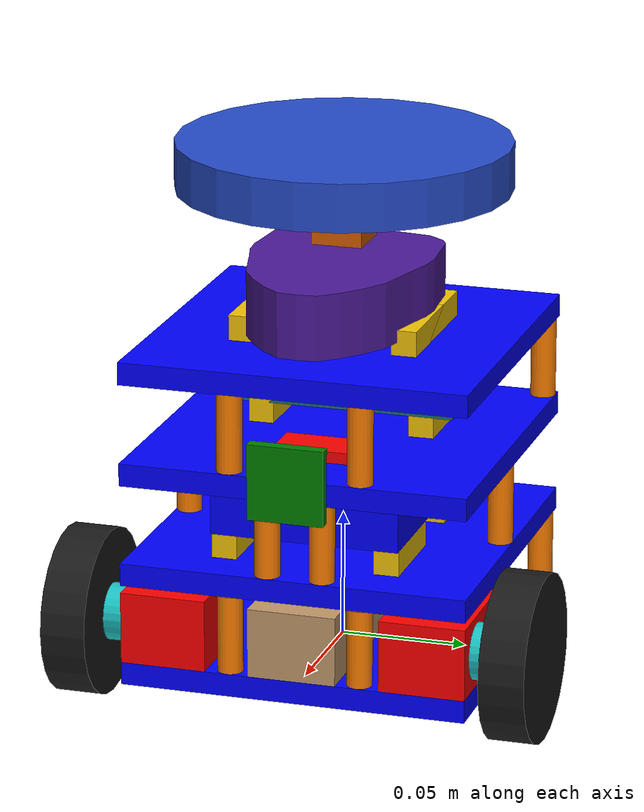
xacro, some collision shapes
<?xml version="1.0" ?>

<robot name="turtlebot3_burger" xmlns:xacro="http://www.ros.org/wiki/xacro">

 <xacro:arg name="use_sim" default="True" />
  <link name="odom">
  </link>
  <link name="base_footprint">
  </link>

  <joint name="odom_base_link_joint" type="fixed">
    <origin rpy="0 0 0" xyz="0 0 0"/>
    <parent link="odom"/>
    <child link="base_footprint"/>
  </joint>

  <xacro:include filename="$(find ros2_urdf_project_gazebo)/xacro/tb3_burger_material.xacro" />

  <!-- if we use Gazebo -->

  <xacro:if value="$(arg use_sim)">
    <xacro:include filename="$(find ros2_urdf_project_gazebo)/xacro/gazebo_materials.xacro" />
    <xacro:include filename="$(find ros2_urdf_project_gazebo)/xacro/gazebo_sensors.xacro" />
    <xacro:include filename="$(find ros2_urdf_project_gazebo)/xacro/gazebo_plugins.xacro" />
  </xacro:if>

  <xacro:include filename="$(find ros2_urdf_project_gazebo)/xacro/chassis.xacro" />
  <xacro:include filename="$(find ros2_urdf_project_gazebo)/xacro/electronics.xacro" />
  <xacro:include filename="$(find ros2_urdf_project_gazebo)/xacro/wheel.xacro" />
  <xacro:include filename="$(find ros2_urdf_project_gazebo)/xacro/sensors.xacro" />

  <!-- chassis 137.5mm x 137.5mm x 9mm -->
 <xacro:chassis_macro name="chassis"/>
 <xacro:chassis_macro name="chassis1"/>
 <xacro:chassis_macro name="chassis2"/>
 <xacro:chassis_macro name="chassis3"/>

  <joint name="base_link_joint" type="fixed">
    <origin rpy="0 0 0" xyz="0 0 0"/>
    <parent link="base_footprint"/>
    <child link="chassis"/>
  </joint>

  <!-- Drive motor - 46.5mm x 34mm x 28.5mm -->
  <xacro:drive_motor_macro name="drive_motor_1"/>
  <xacro:drive_motor_macro name="drive_motor_2"/>

  <joint name="chasis_left_drive_motor" type="fixed">
    <origin rpy="0 0 0" xyz="0.0455 0.05175 0.01875"/>
    <parent link="chassis"/>
    <child link="drive_motor_1"/>
  </joint>

  <joint name="chasis_right_drive_motor" type="fixed">
    <origin rpy="0 0 0" xyz="0.0455 -0.05175 0.01875"/>
    <parent link="chassis"/>
    <child link="drive_motor_2"/>
  </joint>

    <joint name="front_pitch_joint" type="continuous">
    <origin rpy="0 0 0" xyz="0 0 0"/>
    <parent link="front_roll_link"/>
    <child link="front_pitch_link"/>
    <axis xyz="0 1 0"/>
    <limit effort="1000.0" velocity="100.0"/>
    <dynamics damping="0.0" friction="0.1"/>
  </joint>

  <joint name="chasis_battery" type="fixed">
    <origin rpy="0 0 0" xyz="0.01875 0 0.01825"/>
    <parent link="chassis"/>
    <child link="battery"/>
  </joint>

   <xacro:spacer_35mm_macro name="spacer_chasis_1_01"/>
   <xacro:spacer_35mm_macro name="spacer_chasis_1_02"/>
   <xacro:spacer_35mm_macro name="spacer_chasis_1_03"/>
   <xacro:spacer_35mm_macro name="spacer_chasis_1_04"/>

  <joint name="chasis_spacer_chasis_1_01" type="fixed">
    <origin rpy="0 0 0" xyz="0.06375 -0.025875 0.01825"/>
    <parent link="chassis"/>
    <child link="spacer_chasis_1_01"/>
  </joint>

  <joint name="chasis_spacer_chasis_1_02" type="fixed">
    <origin rpy="0 0 0" xyz="0.06375 0.025875 0.01825"/>
    <parent link="chassis"/>
    <child link="spacer_chasis_1_02"/>
  </joint>

  <joint name="chasis_spacer_chasis_1_03" type="fixed">
    <origin rpy="0 0 0" xyz="-0.06375 -0.06375 0.01825"/>
    <parent link="chassis"/>
    <child link="spacer_chasis_1_03"/>
  </joint>

  <joint name="chasis_spacer_chasis_1_04" type="fixed">
    <origin rpy="0 0 0" xyz="-0.06375 0.06375 0.01825"/>
    <parent link="chassis"/>
    <child link="spacer_chasis_1_04"/>
  </joint>

  <xacro:drive_wheel_axel_macro name="drive_wheel_axel_l"/>
  <xacro:drive_wheel_axel_macro name="drive_wheel_axel_r"/>

  <joint name="drive_wheel_to_axel_l" type="fixed">
    <origin rpy="1.57 0 0" xyz="0.05175 -0.073425 0.01875"/>
    <parent link="chassis"/>
    <child link="drive_wheel_axel_l"/>
  </joint>

  <joint name="drive_wheel_to_axel_r" type="fixed">
    <origin rpy="1.57 0 0" xyz="0.05175 0.073425 0.01875"/>
    <parent link="chassis"/>
    <child link="drive_wheel_axel_r"/>
  </joint>

  <xacro:drive_wheel_macro name="drive_wheel_l"/>
  <xacro:drive_wheel_macro name="drive_wheel_r"/>

  <joint name="drive_wheel_tire_to_axel_l" type="continuous">
    <origin rpy="1.57 0 0" xyz="0.05175 -0.087 0.01875"/>
    <parent link="chassis"/>
    <child link="drive_wheel_l"/>
    <axis xyz="0 0 1"/>
    <limit effort="10.0" velocity="10.0"/>
    <dynamics damping="0.0" friction="0.1"/>
  </joint>

  <joint name="drive_wheel_tire_to_axel_r" type="continuous">
    <origin rpy="1.57 0 0" xyz="0.05175 0.087 0.01875"/>
    <parent link="chassis"/>
    <child link="drive_wheel_r"/>
    <axis xyz="0 0 1"/>
    <limit effort="100.0" velocity="100.0"/>
    <dynamics damping="0.0" friction="0.1"/>
  </joint>

  <joint name="drive_castor_wheel_support_size" type="fixed">
    <origin rpy="0 0 0" xyz="-0.05175 0 -0.009"/>
    <parent link="chassis"/>
    <child link="drive_castor_wheel_support"/>
  </joint>

  <joint name="front_yaw_joint" type="continuous">
    <origin rpy="0 0 0" xyz="0 0 -0.004"/>
    <parent link="drive_castor_wheel_support"/>
    <child link="front_yaw_link"/>
    <axis xyz="0 0 1"/>
    <limit effort="100.0" velocity="100.0"/>
    <dynamics damping="0.0" friction="0.1"/>
  </joint>

  <joint name="front_roll_joint" type="continuous">
    <origin rpy="0 0 0" xyz="0 0 0"/>
    <parent link="front_yaw_link"/>
    <child link="front_roll_link"/>
    <axis xyz="1 0 0"/>
    <limit effort="100.0" velocity="100.0"/>
    <dynamics damping="0.0" friction="0.1"/>
  </joint>

  <!-- chassis 137.5mm x 137.5mm x 9mm -->
  <joint name="chasis_to_chasis_1" type="fixed">
    <origin rpy="0 0 0" xyz="0 0 0.0405"/>
    <parent link="chassis"/>
    <child link="chassis1"/>
  </joint>

  <xacro:spacer_45mm_macro name="spacer_chasis_2_01"/>
  <xacro:spacer_45mm_macro name="spacer_chasis_2_02"/>
  <xacro:spacer_45mm_macro name="spacer_chasis_2_03"/>
  <xacro:spacer_45mm_macro name="spacer_chasis_2_04"/>

  <joint name="chasis_spacer_chasis_2_01" type="fixed">
    <origin rpy="0 0 0" xyz="0.06375 -0.010875 0.01825"/>
    <parent link="chassis1"/>
    <child link="spacer_chasis_2_01"/>
  </joint>

  <joint name="chasis_spacer_chasis_2_02" type="fixed">
    <origin rpy="0 0 0" xyz="0.06375 0.010875 0.01825"/>
    <parent link="chassis1"/>
    <child link="spacer_chasis_2_02"/>
  </joint>

  <joint name="chasis_spacer_chasis_2_03" type="fixed">
    <origin rpy="0 0 0" xyz="-0 -0.06375 0.01825"/>
    <parent link="chassis1"/>
    <child link="spacer_chasis_2_03"/>
  </joint>

  <joint name="chasis_spacer_chasis_2_04" type="fixed">
    <origin rpy="0 0 0" xyz="0 0.06375 0.01825"/>
    <parent link="chassis1"/>
    <child link="spacer_chasis_2_04"/>
  </joint>

  <joint name="control_board_to_chasis_1" type="fixed">
    <origin rpy="0 0 0" xyz="0 0 0.0225"/>
    <parent link="chassis1"/>
    <child link="control_board"/>
  </joint>

  <xacro:pcb_mount_macro name="pcb_mount_01"/>
  <xacro:pcb_mount_macro name="pcb_mount_02"/>
  <xacro:pcb_mount_macro name="pcb_mount_03"/>
  <xacro:pcb_mount_macro name="pcb_mount_04"/>

  <joint name="pcb_01_to_controlboard" type="fixed">
    <origin rpy="0 0 0" xyz="0.0321 0.0325 0.0095"/>
    <parent link="chassis1"/>
    <child link="pcb_mount_01"/>
  </joint>

  <joint name="pcb_02_to_controlboard" type="fixed">
    <origin rpy="0 0 0" xyz="-0.0321 0.0325 0.0095"/>
    <parent link="chassis1"/>
    <child link="pcb_mount_02"/>
  </joint>

  <joint name="pcb_03_to_controlboard" type="fixed">
    <origin rpy="0 0 0" xyz="0.0321 -0.0325 0.0095"/>
    <parent link="chassis1"/>
    <child link="pcb_mount_03"/>
  </joint>

  <joint name="pcb_04_to_controlboard" type="fixed">
    <origin rpy="0 0 0" xyz="-0.0321 -0.0325 0.0095"/>
    <parent link="chassis1"/>
    <child link="pcb_mount_04"/>
  </joint>
  <!-- chassis 137.5mm x 137.5mm x 9mm -->
  <joint name="chasis_1_to_chasis_2" type="fixed">
    <origin rpy="0 0 0" xyz="0 0 0.0405"/>
    <parent link="chassis1"/>
    <child link="chassis2"/>
  </joint>

  <xacro:spacer_45mm_macro name="spacer_chasis_3_01"/>
  <xacro:spacer_45mm_macro name="spacer_chasis_3_02"/>
  <xacro:spacer_45mm_macro name="spacer_chasis_3_03"/>
  <xacro:spacer_45mm_macro name="spacer_chasis_3_04"/>

  <joint name="chasis_spacer_chasis_3_01" type="fixed">
    <origin rpy="0 0 0" xyz="0.06375 -0.025875 0.01825"/>
    <parent link="chassis2"/>
    <child link="spacer_chasis_3_01"/>
  </joint>

  <joint name="chasis_spacer_chasis_3_02" type="fixed">
    <origin rpy="0 0 0" xyz="0.06375 0.025875 0.01825"/>
    <parent link="chassis2"/>
    <child link="spacer_chasis_3_02"/>
  </joint>

  <joint name="chasis_spacer_chasis_3_03" type="fixed">
    <origin rpy="0 0 0" xyz="-0.06375 -0.06375 0.01825"/>
    <parent link="chassis2"/>
    <child link="spacer_chasis_3_03"/>
  </joint>

  <joint name="chasis_spacer_chasis_3_04" type="fixed">
    <origin rpy="0 0 0" xyz="-0.06375 0.06375 0.01825"/>
    <parent link="chassis2"/>
    <child link="spacer_chasis_3_04"/>
  </joint>

  <joint name="lidar_usb_board_to_chasis_2" type="fixed">
    <origin rpy="0 0 0" xyz="0.035 0 0.00674"/>
    <parent link="chassis2"/>
    <child link="lidar_usb_board"/>
  </joint>

  <joint name="rsb_board_to_chasis_1" type="fixed">
    <origin rpy="0 0 0" xyz="-0.025 0 0.0225"/>
    <parent link="chassis2"/>
    <child link="rsb_board"/>
  </joint>

  <xacro:pcb_mount_macro name="rsb_mount_01"/>
  <xacro:pcb_mount_macro name="rsb_mount_02"/>
  <xacro:pcb_mount_macro name="rsb_mount_03"/>
  <xacro:pcb_mount_macro name="rsb_mount_04"/>

  <joint name="rsb_01_to_controlboard" type="fixed">
    <origin rpy="0 0 0" xyz="-0.01491 0.0325 0.0095"/>
    <parent link="chassis2"/>
    <child link="rsb_mount_01"/>
  </joint>

  <joint name="rsb_02_to_controlboard" type="fixed">
    <origin rpy="0 0 0" xyz="-0.03509 0.0325 0.0095"/>
    <parent link="chassis2"/>
    <child link="rsb_mount_02"/>
  </joint>

  <joint name="rsb_03_to_controlboard" type="fixed">
    <origin rpy="0 0 0" xyz="-0.01491 -0.0325 0.0095"/>
    <parent link="chassis2"/>
    <child link="rsb_mount_03"/>
  </joint>

  <joint name="rsb_04_to_controlboard" type="fixed">
    <origin rpy="0 0 0" xyz="-0.03509 -0.0325 0.0095"/>
    <parent link="chassis2"/>
    <child link="rsb_mount_04"/>
  </joint>
  <!-- chassis 137.5mm x 137.5mm x 9mm -->

  <joint name="chasis_2_to_chasis_3" type="fixed">
    <origin rpy="0 0 0" xyz="0 0 0.0405"/>
    <parent link="chassis2"/>
    <child link="chassis3"/>
  </joint>

  <joint name="lidar_board_to_chasis_1" type="fixed">
    <origin rpy="0 0 0" xyz="0 0 0.0225"/>
    <parent link="chassis3"/>
    <child link="lidar_board"/>
  </joint>

  <xacro:pcb_mount_macro name="lidar_mount_01"/>
  <xacro:pcb_mount_macro name="lidar_mount_02"/>
  <xacro:pcb_mount_macro name="lidar_mount_03"/>
  <xacro:pcb_mount_macro name="lidar_mount_04"/>

  <joint name="lidar_01_to_controlboard" type="fixed">
    <origin rpy="0 0 0" xyz="0.01009 0.0325 0.0095"/>
    <parent link="chassis3"/>
    <child link="lidar_mount_01"/>
  </joint>

  <joint name="lidar_02_to_controlboard" type="fixed">
    <origin rpy="0 0 0" xyz="-0.01009 0.0325 0.0095"/>
    <parent link="chassis3"/>
    <child link="lidar_mount_02"/>
  </joint>

  <joint name="lidar_03_to_controlboard" type="fixed">
    <origin rpy="0 0 0" xyz="0.01009 -0.0325 0.0095"/>
    <parent link="chassis3"/>
    <child link="lidar_mount_03"/>
  </joint>

  <joint name="lidar_04_to_controlboard" type="fixed">
    <origin rpy="0 0 0" xyz="-0.01009 -0.0325 0.0095"/>
    <parent link="chassis3"/>
    <child link="lidar_mount_04"/>
  </joint>

    <joint name="laser_scan_link_joint" type="prismatic">
        <origin rpy="0 0 0" xyz="0.0 0.0 0.05"/>
        <parent link="chassis3"/>
        <child link="laser_scan_link"/>
        <axis xyz="0 0 1"/>
        <limit lower="-0.1" upper="0.0" effort="20.0" velocity="2.0"/>
        <dynamics damping="0.1" friction="1.0"/>
    </joint>

     <joint name="laser_scan_model_link_joint" type="continuous">
        <origin rpy="0 0 0" xyz="0.0 0.0 0.0"/>
        <parent link="laser_scan_link"/>
        <child link="laser_scan_model_link"/>
        <axis xyz="0 0 1"/>
        <limit effort="10.0" velocity="2.0"/>
        <dynamics friction="0.01"/>
    </joint>

  <xacro:if value="$(arg use_sim)">
    <joint name="laser_scan_frame_joint" type="fixed">
        <origin rpy="0 0 0" xyz="0 0 0.03"/>
        <parent link="laser_scan_link"/>
        <child link="laser_scan_frame"/>
        <axis xyz="0 0 0"/>
    </joint>
    <joint name="rgb_camera_link_frame_joint" type="fixed">
        <origin rpy="0 0 0" xyz="0.07375 0.0 0.005"/>
        <parent link="chassis2"/>
        <child link="rgb_camera_link_frame"/>
        <axis xyz="0 0 0"/>
    </joint>
  </xacro:if>
    <joint name="pointcloud_link_joint" type="fixed">
        <origin rpy="0 0 0" xyz="0.07375 0.0 0.005"/>
        <parent link="chassis2"/>
        <child link="pointcloud_link"/>
        <axis xyz="0 0 0"/>
    </joint>

  <link name="imu_link"/>

  <link name="pointcloud_link">
  </link>

  <joint name="imu_joint" type="fixed">
    <parent link="chassis3"/>
    <child link="imu_link"/>
    <origin rpy="0 0 0" xyz="-0.10 0 0.05"/>
  </joint>
</robot>

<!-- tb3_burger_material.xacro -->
<robot xmlns:xacro="http://www.ros.org/wiki/xacro">
  <material name="spacer_35mm">
    <color rgba="0.088656 0.428691 0.491021 1"/>
  </material>
  <material name="default_material">
    <color rgba="0.088656 0.428691 0.491021 1"/>
  </material>
    <material name="box_bot_blue">
      <color rgba="0.0 0.0 1.0 1.0"/>
    </material>
      <material name="drive_motor">
    <color rgba="1.0 0.0 0.0 1"/>
    </material>
      <material name="maroon">
    <color rgba="1.0 0.0 0.0 1"/>
    </material>
  <material name="battery">
    <color rgba="0.55 0.55 0.55 1"/>
  </material>
  <material name="wheel_axel">
    <color rgba="0.1 0.75 0.75 1"/>
  </material>
  <material name="wheel">
    <color rgba="0.1 0.1 0.1 1"/>
  </material>
  <material name="castor_wheel_support">
    <color rgba="0 0.5 0.5 1"/>
  </material>
  <material name="red">
    <color rgba="1.0 0.0 0.0 1"/>
  </material>
  <material name="green_light">
    <color rgba="0.0 1.0 0.0 1"/>
  </material>
  <material name="green_dark">
    <color rgba="0.0 0.5 0.0 1"/>
  </material>
  <material name="blue">
    <color rgba="0.0 0.0 1.0 1"/>
  </material>
  <material name="black">
    <color rgba="0.0 0.0 0.0 1"/>
  </material>
  <material name="white">
    <color rgba="1.0 1.0 1.0 1"/>
  </material>
  </robot>

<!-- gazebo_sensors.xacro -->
<robot xmlns:xacro="http://www.ros.org/wiki/xacro">
  <gazebo reference="imu_link">
    <sensor name="br_imu" type="imu">
      <always_on>true</always_on>
      <update_rate>100</update_rate>
      <imu>
        <angular_velocity>
          <x>
            <noise type="gaussian">
              <mean>0.0</mean>
              <stddev>2e-4</stddev>
            </noise>
          </x>
          <y>
            <noise type="gaussian">
              <mean>0.0</mean>
              <stddev>2e-4</stddev>
            </noise>
          </y>
          <z>
            <noise type="gaussian">
              <mean>0.0</mean>
              <stddev>2e-4</stddev>
            </noise>
          </z>
        </angular_velocity>
        <linear_acceleration>
          <x>
            <noise type="gaussian">
              <mean>0.0</mean>
              <stddev>1.7e-2</stddev>
            </noise>
          </x>
          <y>
            <noise type="gaussian">
              <mean>0.0</mean>
              <stddev>1.7e-2</stddev>
            </noise>
          </y>
          <z>
            <noise type="gaussian">
              <mean>0.0</mean>
              <stddev>1.7e-2</stddev>
            </noise>
          </z>
        </linear_acceleration>
      </imu>
      <plugin filename="libgazebo_ros_imu_sensor.so" name="bytes_imu">
        <ros>
          <namespace>imu</namespace>
          <remapping>~/out:=data</remapping>
        </ros>
        <initial_orientation_as_reference>false</initial_orientation_as_reference>
      </plugin>
    </sensor>
  </gazebo>
    <link name="laser_scan_frame">
  </link>
  <gazebo reference="laser_scan_frame">
    <sensor name="sensor_ray" type="ray">
      <pose>0 0 0 0 0 0</pose>
      <ray>
        <scan>
          <horizontal>
            <samples>200</samples>
            <resolution>1.0</resolution>
            <min_angle>-3.14</min_angle>
            <max_angle>3.14</max_angle>
          </horizontal>
        </scan>
        <range>
          <min>0.1</min>
          <max>5.0</max>
        </range>
      </ray>
      <always_on>true</always_on>
      <visualize>true</visualize>
      <update_rate>100.0</update_rate>
      <plugin filename="libgazebo_ros_ray_sensor.so" name="laser">
        <ros>
          <namespace>ros2_urdf_project_gazebo</namespace>
          <remapping>~/out:=scan</remapping>
        </ros>
        <output_type>sensor_msgs/LaserScan</output_type>
      </plugin>
    </sensor>
  </gazebo>

    <gazebo reference="rgb_camera_link_frame">
    <sensor name="camera" type="wideanglecamera">
      <camera>
        <horizontal_fov>6.283</horizontal_fov>
        <image>
          <width>320</width>
          <height>240</height>
        </image>
        <clip>
          <near>0.1</near>
          <far>100</far>
        </clip>
        <lens>
          <type>custom</type>
          <custom_function>
            <c1>1.05</c1>
            <c2>4</c2>
            <f>1.0</f>
            <fun>tan</fun>
          </custom_function>
          <scale_to_hfov>true</scale_to_hfov>
          <cutoff_angle>3.1415</cutoff_angle>
          <env_texture_size>512</env_texture_size>
        </lens>
        <always_on>1</always_on>
        <update_rate>30</update_rate>
      </camera>
      <plugin filename="libgazebo_ros_camera.so" name="camera_controller">
        <cameraName>rgb_camera</cameraName>
        <imageTopicName>image_raw</imageTopicName>
        <cameraInfoTopicName>camera_info</cameraInfoTopicName>
        <frameName>rgb_camera_link_frame</frameName>
        <hackBaseline>0.07</hackBaseline>
      </plugin>
    </sensor>
  </gazebo>
  <gazebo>
    <plugin filename="libgazebo_ros2_control.so" name="gazebo_ros2_control">
      <parameters>$(find ros2_urdf_project_gazebo)/config/controller_position.yaml</parameters>
      <robot_param_node>/robot_state_publisher_node</robot_param_node>
    </plugin>
  </gazebo>

  <link name="rgb_camera_link_frame">
    <inertial>
      <mass value="0.010"/>
      <inertia ixx="1.5e-06" ixy="0" ixz="0" iyy="7.708333333333333e-07" iyz="0" izz="7.708333333333333e-07"/>
    </inertial>
    <visual>
      <geometry>
        <box size="0.005 0.030 0.030"/>
      </geometry>
      <material name="green_dark"/>
    </visual>
    <collision>
      <geometry>
        <box size="0.005 0.030 0.030"/>
      </geometry>
    </collision>
  </link>

  <ros2_control name="GazeboSystem" type="system">
    <hardware>
      <plugin>gazebo_ros2_control/GazeboSystem</plugin>
    </hardware>
    <joint name="laser_scan_link_joint">
      <command_interface name="position">
        <min>-0.05</min>
        <max>0.0</max>
      </command_interface>
      <state_interface name="position"/>
      <state_interface name="velocity"/>
      <state_interface name="effort"/>
    </joint>
    <joint name="laser_scan_model_link_joint">
      <command_interface name="velocity">
        <min>0.0</min>
        <max>2.0</max>
      </command_interface>
      <state_interface name="position"/>
      <state_interface name="velocity"/>
      <state_interface name="effort"/>
    </joint>
  </ros2_control>
</robot>

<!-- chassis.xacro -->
<robot name="turtlebot3_burger" xmlns:xacro="http://www.ros.org/wiki/xacro">

  <xacro:property name="chassis_width" value="0.1375"/>
  <xacro:property name="chassis_length" value="0.1375"/>
  <xacro:property name="chassis_height" value="0.009"/>
  <xacro:property name="chassis_mass" value="0.035"/>

  <xacro:macro name="chassis_macro" params="name">
  <link name="${name}">
    <inertial>
      <mass value="${chassis_mass}"/>
      <origin rpy="0 0 0" xyz="0 0 0"/>
      <inertia ixx="5.537947916666668e-05" ixy="0" ixz="0" iyy="5.537947916666668e-05" iyz="0" izz="0.00011028645833333336"/>
    </inertial>
    <collision>
      <geometry>
        <box size="${chassis_width} ${chassis_length} ${chassis_height}"/>
      </geometry>
    </collision>
    <visual>
      <geometry>
        <box size="${chassis_width} ${chassis_length} ${chassis_height}"/>
      </geometry>
      <material name="blue">
      <color rgba="0.0 0.0 1.0 1.0"/>
    </material>
    </visual>
  </link>
  </xacro:macro>

  <xacro:macro name="spacer_35mm_macro" params="name">
  <link name="${name}">
    <inertial>
      <mass value="0.007"/>
      <origin rpy="0 0 0" xyz="0 0 0"/>
      <inertia ixx="7.583333e-07" ixy="0.0" ixz="0.0" iyy="7.583333e-07" iyz="0.0" izz="8.750000e-08"/>
    </inertial>
    <collision>
      <geometry>
        <cylinder length="0.035" radius="0.005"/>
      </geometry>
      <origin rpy="0 0 0" xyz="0 0 0"/>
    </collision>
    <visual>
      <geometry>
        <cylinder length="0.035" radius="0.005"/>
      </geometry>
      <material name="orange">
      <color rgba="1.0 0.5 0.0 1.0"/>
    </material>
    </visual>
  </link>
  </xacro:macro>

  <xacro:macro name="spacer_45mm_macro" params="name">
  <link name="${name}">
  <inertial>
      <mass value="0.009"/>
      <origin rpy="0 0 0" xyz="0 0 0"/>
      <inertia ixx="1.5749999999999997e-06" ixy="0" ixz="0" iyy="1.5749999999999997e-06" iyz="0" izz="1.125e-07"/>
    </inertial>
    <collision>
      <geometry>
        <cylinder length="0.045" radius="0.005"/>
      </geometry>
      <origin rpy="0 0 0" xyz="0 0 0"/>
    </collision>
    <visual>
      <geometry>
        <cylinder length="0.045" radius="0.005"/>
      </geometry>
      <material name="orange">
      <color rgba="1.0 0.5 0.0 1.0"/>
    </material>
    </visual>
  </link>
  </xacro:macro>

  <link name="battery">
    <!-- Inertial Block -->
    <inertial>
      <mass value="0.2"/>
      <origin rpy="0 0 0" xyz="0 0 0"/>
      <!-- Center of mass assumed at the origin -->
      <inertia ixx="3.302083333333334e-05" ixy="0" ixz="0" iyy="0.00017927083333333337" iyz="0" izz="0.00018708333333333337"/>
    </inertial>
    <!-- Collision Block -->
    <collision>
      <geometry>
        <box size="0.1 0.035 0.0275"/>
        <!-- Width, Depth, Height -->
      </geometry>
      <origin rpy="0 0 0" xyz="0 0 0"/>
      <!-- Assuming the collision box is aligned with the link's frame -->
    </collision>
    <visual>
      <geometry>
        <box size="0.100 0.035 0.0275"/>
      </geometry>
    <material name="Wood">
        <color rgba="0.76 0.60 0.42 1"/>
    </material>

    </visual>
  </link>

  <xacro:macro name="pcb_mount_macro" params="name">
  <link name="${name}">
    <inertial>
      <origin xyz="0 0 0"/>
      <mass value="0.005"/>
      <inertia ixx="8.333333333333334e-08" ixy="0.0" ixz="0.0" iyy="6.376468333333333e-07" iyz="0.0" izz="6.376468333333333e-07"/>
    </inertial>
    <collision>
      <origin xyz="0 0 0"/>
      <geometry>
        <box size="0.03782 0.010 0.010"/>
      </geometry>
    </collision>
    <visual>
      <geometry>
        <box size="0.03782 0.010 0.010"/>
      </geometry>
    <material name="ZincYellow">
        <color rgba="0.956 0.776 0.023 1"/>
    </material>

    </visual>
  </link>
  </xacro:macro>

</robot>

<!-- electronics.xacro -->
<robot xmlns:xacro="http://www.ros.org/wiki/xacro">
  <!-- chassis 137.5mm x 137.5mm x 9mm -->
  <xacro:property name="drive_motor_width" value="0.0465"/>
  <xacro:property name="drive_motor_length" value="0.034"/>
  <xacro:property name="drive_motor_height" value="0.0285"/>
  <xacro:property name="drive_motor_mass" value="0.050"/>

  <xacro:macro name="drive_motor_macro" params="name">
  <link name="${name}">
    <inertial>
      <mass value="${drive_motor_mass}"/>
      <origin rpy="0 0 0" xyz="0 0 0"/>
      <!-- Center of mass assumed at the origin -->
      <inertia ixx="8.201041666666668e-06" ixy="0" ixz="0" iyy="1.239375e-05" iyz="0" izz="1.3826041666666666e-05"/>
    </inertial>
    <!-- Collision Block -->
    <collision>
      <geometry>
        <box size="${drive_motor_width} ${drive_motor_length} ${drive_motor_height}"/>
        <!-- Width, Depth, Height -->
      </geometry>
      <origin rpy="0 0 0" xyz="0 0 0"/>
      <!-- Assuming the collision box is aligned with the link's frame -->
    </collision>
    <visual>
      <geometry>
        <box size="${drive_motor_width} ${drive_motor_length} ${drive_motor_height}"/>
      </geometry>
      <material name="drive_motor"/>
    </visual>

  </link>
    </xacro:macro>

  <link name="control_board">
    <inertial>
      <origin xyz="0 0 0"/>
      <mass value="0.060"/>
      <inertia ixx="2.9405e-05" ixy="0.0" ixz="0.0" iyy="5.6405e-05" iyz="0.0" izz="8.325e-05"/>
    </inertial>
    <collision>
      <origin xyz="0 0 0"/>
      <geometry>
        <box size="0.105 0.075 0.016"/>
      </geometry>
    </collision>
    <visual>
      <geometry>
        <box size="0.105 0.075 0.016"/>
      </geometry>
      <material name="box_bot_blue"/>
    </visual>
  </link>

  <link name="lidar_usb_board">
    <!-- Inertial Properties -->
    <inertial>
      <mass value="0.010"/>
      <!-- Mass of the Lidar USB board -->
      <origin rpy="0 0 0" xyz="0 0 0"/>
      <!-- Center of mass at the origin -->
      <inertia ixx="7.66875e-07" ixy="0.0" ixz="0.0" iyy="2.86875e-07" iyz="0.0" izz="1.02e-06"/>
      <!-- Moments of inertia -->
    </inertial>
    <!-- Collision Block -->
    <collision>
      <geometry>
        <box size="0.018 0.030 0.0045"/>
      </geometry>
      <origin rpy="0 0 0" xyz="0 0 0"/>
    </collision>
    <!-- Visual Block -->
    <visual>
      <geometry>
        <box size="0.018 0.030 0.0045"/>
      </geometry>
      <material name="maroon"/>
    </visual>
  </link>

  <link name="rsb_board">
    <inertial>
      <origin rpy="0 0 0" xyz="0 0 0"/>
      <mass value="0.050"/>
      <inertia ixx="3.5310093750000004e-05" ixy="0" ixz="0" iyy="1.5576760416666668e-05" iyz="0" izz="4.7766666666666664e-05"/>
    </inertial>
    <visual>
      <origin rpy="0 0 0" xyz="0 0 0"/>
      <geometry>
        <box size="0.058 0.090 0.01935"/>
      </geometry>
      <material name="default_material"/>
    </visual>
    <collision>
      <origin rpy="0 0 0" xyz="0 0 0"/>
      <geometry>
        <box size="0.058 0.090 0.01935"/>
      </geometry>
    </collision>
  </link>

  <link name="lidar_board">
    <inertial>
      <origin rpy="0 0 0" xyz="0 0 0"/>
      <mass value="0.050"/>
      <inertia ixx="3.5310093750000004e-05" ixy="0" ixz="0" iyy="1.5576760416666668e-05" iyz="0" izz="4.7766666666666664e-05"/>
    </inertial>
    <visual>
      <origin rpy="0 0 0" xyz="0 0 0"/>
      <geometry>
        <mesh filename="package://ros2_urdf_project_gazebo/meshes/sensors/lds_base.dae" scale="0.001 0.001 0.001"/>
      </geometry>
    </visual>
    <collision>
      <origin rpy="0 0 0" xyz="0 0 0"/>
      <geometry>
        <box size="0.058 0.090 0.01935"/>
      </geometry>
    </collision>
  </link>

  </robot>

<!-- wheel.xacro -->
<robot xmlns:xacro="http://www.ros.org/wiki/xacro">

  <xacro:macro name="drive_wheel_axel_macro" params="name">
  <link name="${name}">

    <!-- Inertial Block -->
    <inertial>
      <mass value="0.010"/>
      <origin rpy="0 0 0" xyz="0 0 0"/>
      <!-- Center of mass assumed at the origin -->
      <inertia ixx="3.892583333333333e-07" ixy="0" ixz="0" iyy="3.892583333333333e-07" iyz="0" izz="6.328125e-07"/>
    </inertial>
    <!-- Collision Block -->
    <collision>
      <geometry>
        <cylinder length="0.00935" radius="0.01125"/>
        <!-- Radius and Height (length) of the cylinder -->
      </geometry>
      <origin rpy="0 0 0" xyz="0 0 0"/>
      <!-- Assuming the collision cylinder is aligned with the link's frame -->
    </collision>
    <visual>
      <geometry>
        <cylinder length="0.00935" radius="0.01125"/>
      </geometry>
      <material name="wheel_axel"/>
    </visual>
  </link>
 </xacro:macro>

  <xacro:macro name="drive_wheel_macro" params="name">
  <link name="${name}">
    <inertial>
      <mass value="0.010"/>
      <origin rpy="0 0 0" xyz="0 0 0"/>
      <inertia ixx="2.986533333333334e-06" ixy="0" ixz="0" iyy="2.986533333333334e-06" iyz="0" izz="5.445e-06"/>
    </inertial>
    <!-- Collision Properties -->
    <collision>
      <origin rpy="0 0 0" xyz="0 0 0"/>
      <geometry>
        <cylinder length="0.0178" radius="0.033"/>
      </geometry>
    </collision>
    <visual>
      <geometry>
        <cylinder length="0.0178" radius="0.033"/>
      </geometry>
      <material name="wheel"/>
    </visual>
  </link>
 </xacro:macro>

  <!-- Castor wheel -->
  <link name="drive_castor_wheel_support">
    <inertial>
      <mass value="0.010"/>
      <origin rpy="0 0 0" xyz="0 0 0"/>
      <inertia ixx="3.233333333333333e-07" ixy="0" ixz="0" iyy="8.033333333333334e-07" iyz="0" izz="1.02e-06"/>
    </inertial>
    <!-- Collision Properties -->
    <collision>
      <origin rpy="0 0 0" xyz="0 0 0"/>
      <geometry>
        <box size="0.030 0.018 0.008"/>
      </geometry>
    </collision>
    <visual>
      <geometry>
        <box size="0.030 0.018 0.008"/>
      </geometry>
      <material name="castor_wheel_support"/>
    </visual>
  </link>

  <link name="front_roll_link">
    <collision>
      <origin rpy="0 1.5707 1.5707" xyz="0 0 0"/>
      <geometry>
        <cylinder length="0.001" radius="0.0045000000000000005"/>
      </geometry>
    </collision>
    <inertial>
      <origin rpy="0 1.5707 1.5707" xyz="0 0 0"/>
      <mass value="0.001"/>
      <inertia ixx="5.145833333333334e-09" ixy="0" ixz="0" iyy="5.145833333333334e-09" iyz="0" izz="1.0125000000000003e-08"/>
    </inertial>
    <visual>
      <origin rpy="0 1.5707 1.5707" xyz="0 0 0"/>
      <geometry>
        <cylinder length="0.005" radius="0.005"/>
      </geometry>
      <material name="red"/>
    </visual>
  </link>

  <link name="front_pitch_link">
    <collision>
      <origin rpy="0 1.5707 1.5707" xyz="0 0 0"/>
      <geometry>
        <sphere radius="0.010"/>
      </geometry>
    </collision>
    <inertial>
      <origin rpy="0 1.5707 1.5707" xyz="0 0 0"/>
      <mass value="0.001"/>
      <inertia ixx="4e-08" ixy="0" ixz="0" iyy="4e-08" iyz="0" izz="4e-08"/>
    </inertial>
    <visual>
      <origin rpy="0 1.5707 1.5707" xyz="0 0 0"/>
      <geometry>
        <sphere radius="0.005"/>
      </geometry>
      <material name="green_dark"/>
    </visual>
  </link>

  <link name="front_yaw_link">
    <collision>
      <origin rpy="0 1.5707 1.5707" xyz="0 0 0"/>
      <geometry>
        <cylinder length="0.001" radius="0.0045000000000000005"/>
      </geometry>
    </collision>
    <inertial>
      <origin rpy="0 1.5707 1.5707" xyz="0 0 0"/>
      <mass value="0.001"/>
      <inertia ixx="5.145833333333334e-09" ixy="0" ixz="0" iyy="5.145833333333334e-09" iyz="0" izz="1.0125000000000003e-08"/>
    </inertial>
    <visual>
      <origin rpy="0 1.5707 1.5707" xyz="0 0 0"/>
      <geometry>
        <cylinder length="0.001" radius="0.005"/>
      </geometry>
      <material name="blue"/>
    </visual>
  </link>

</robot>

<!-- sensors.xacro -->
<robot xmlns:xacro="http://www.ros.org/wiki/xacro">

  <!-- Laser Position Control-->
  <link name="laser_scan_link">
    <visual>
      <origin rpy="0 0 0" xyz="0 0 0"/>
      <geometry>
        <box size="0.02 0.02 0.02"/>
      </geometry>
    </visual>
    <collision>
      <origin rpy="0 0 0" xyz="0 0 0.0204"/>
      <geometry>
        <box size="0.02 0.02 0.02"/>
      </geometry>
    </collision>
    <inertial>
      <mass value="0.01"/>
      <origin rpy="0 0 0" xyz="0 0 0.0204"/>
      <inertia ixx="6.066578520833334e-06" ixy="0" ixz="0" iyy="6.072950163333333e-06" iyz="0" izz="9.365128684166666e-06"/>
    </inertial>
  </link>

  <link name="laser_scan_model_link">
    <inertial>
      <mass value="0.050"/>
      <inertia ixx="5.493716666666667e-05" ixy="0" ixz="0" iyy="5.493716666666667e-05" iyz="0" izz="0.00010692900000000002"/>
    </inertial>
    <visual>
      <origin rpy="0 0 0" xyz="0 0 0"/>
      <geometry>
        <mesh filename="package://ros2_urdf_project_gazebo/meshes/sensors/lds_top.dae" scale="0.001 0.001 0.001"/>
      </geometry>
     </visual>
    <collision>
      <origin rpy="0 0 0" xyz="0 0 0.0204"/>
      <geometry>
        <cylinder length="0.0188" radius="0.0654"/>
      </geometry>
    </collision>
  </link>
</robot>
